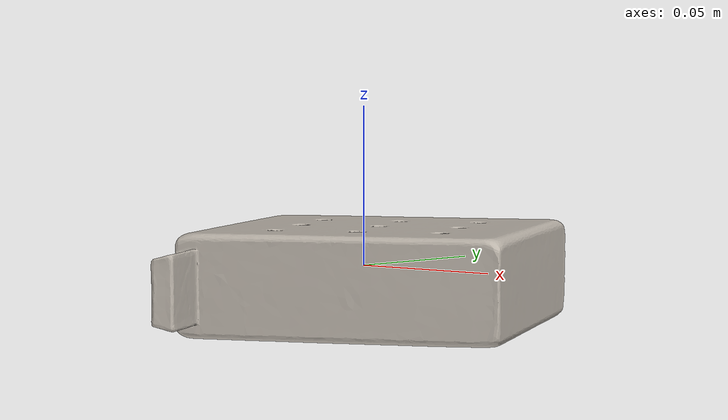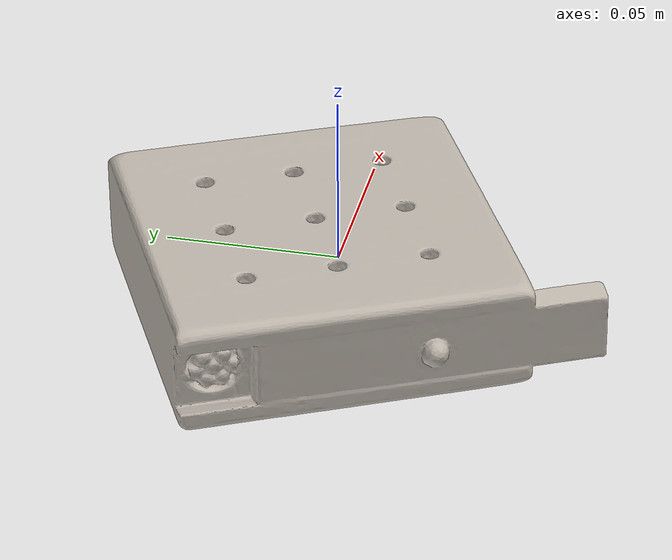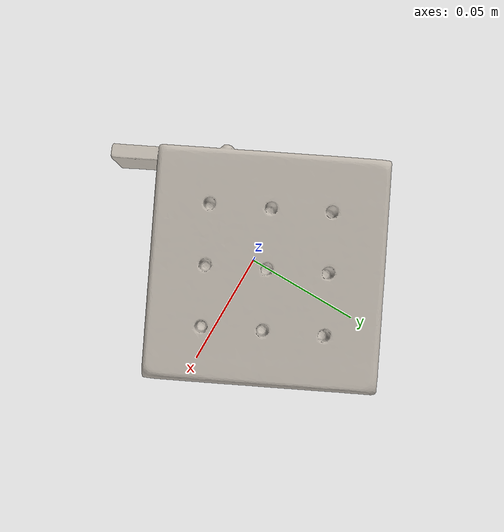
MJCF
<mujoco model="bread">
  <asset>
    <mesh file="nontextured.stl" name="obj_mesh" scale="0.8 0.8 0.8"/>
    <texture file="../../../../../textures/bread.png" type="2d" name="tex-bread" />
    <material name="bread" reflectance="0.7" texrepeat="15 15" texture="tex-bread" texuniform="true"/>
  </asset>
  <worldbody>
    <body>
      <body name="collision">
        <geom pos="0.0008634999999999962 -0.01364 -0.020015500000000002" mesh="obj_mesh" type="mesh" solimp="0.998 0.998 0.001" solref="0.001 1" density="50" friction="0.95 0.3 0.1"  material="bread" group="1" condim="4"/>
      </body>
      <body name="visual">
        <geom pos="0.0008634999999999962 -0.01364 -0.020015500000000002" mesh="obj_mesh" type="mesh" material="bread"  conaffinity="0" contype="0"  group="0" mass="0.0001"/>
        <geom pos="0.0008634999999999962 -0.01364 -0.020015500000000002" mesh="obj_mesh" type="mesh" material="bread"  conaffinity="0" contype="0"  group="1" mass="0.0001"/>
      </body>
      <site rgba="0 0 0 0" size="0.005" pos="0 0 -0.0203385" name="bottom_site"/>
      <site rgba="0 0 0 0" size="0.005" pos="0 0 0.0203385" name="top_site"/>
      <site rgba="0 0 0 0" size="0.005" pos="0.08376449999999999 0.095556 0.0203385" name="horizontal_radius_site"/>
    </body>
  </worldbody>
</mujoco>
